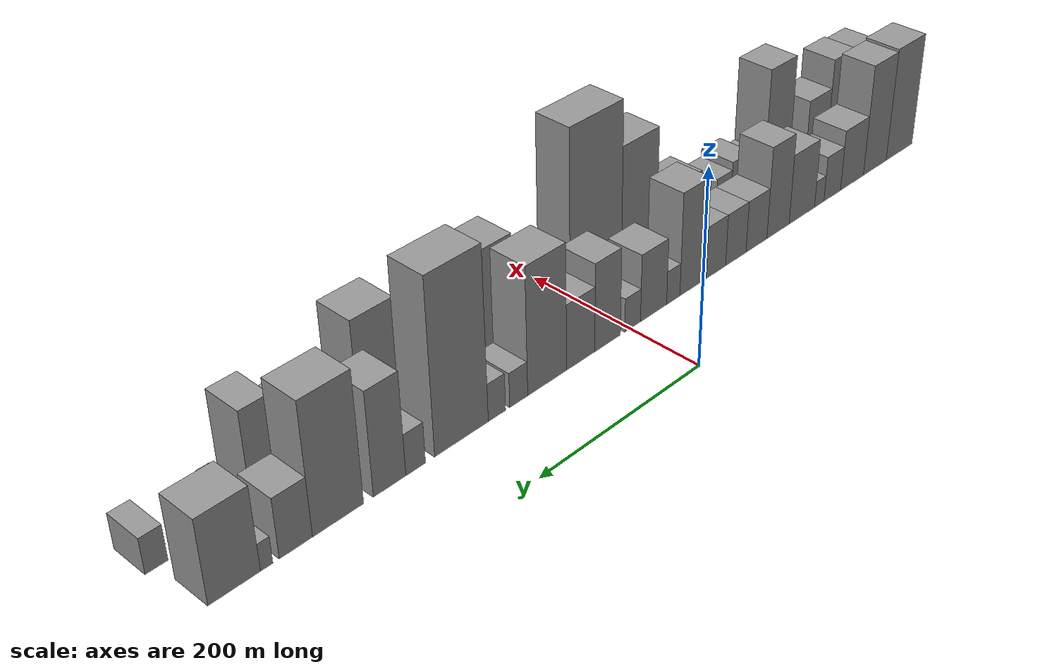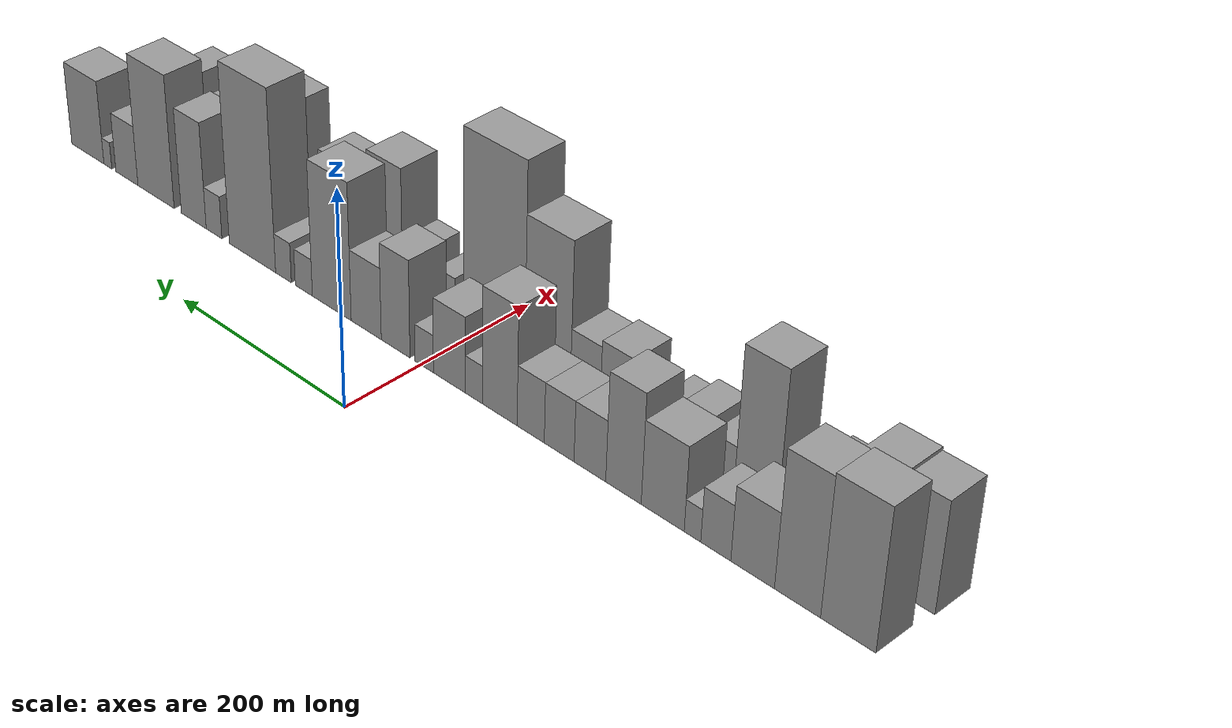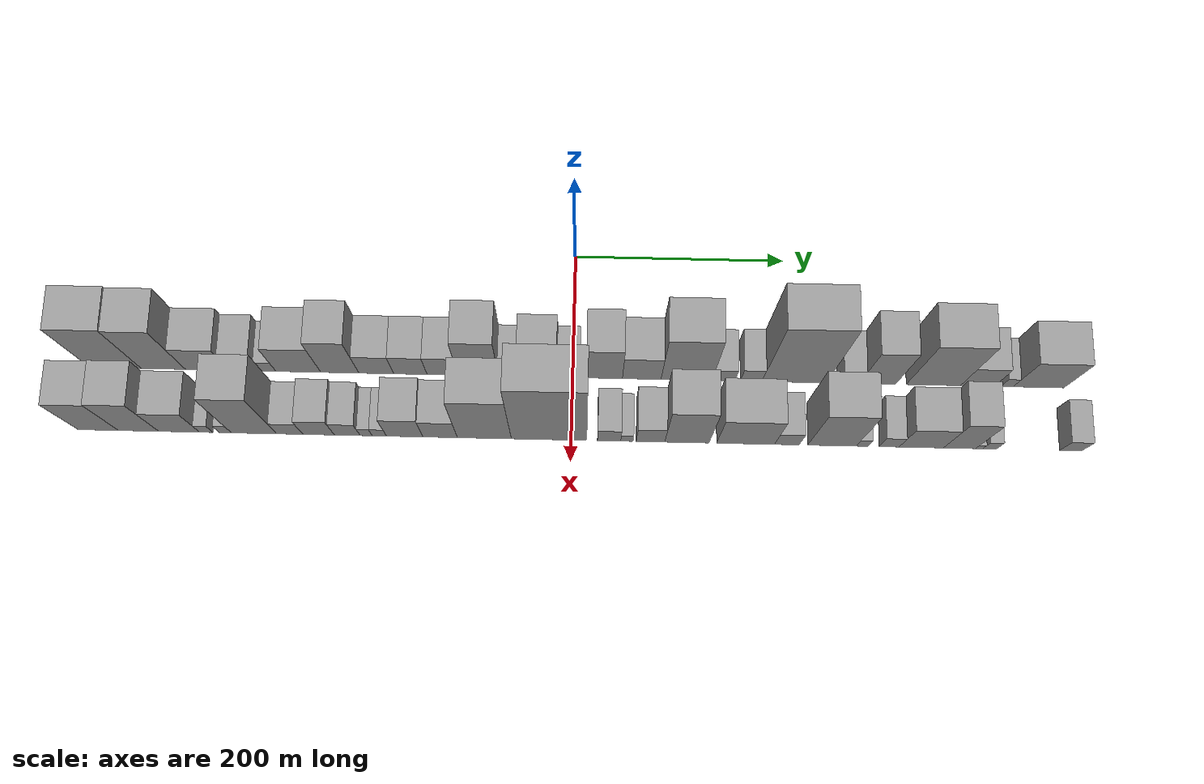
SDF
<sdf version="1.6">
 <world name="default">
  <scene>
   <sky><clouds><speed>12</speed></clouds></sky>
   <ambient>0.4 0.4 0.4 1</ambient>
   <background>0.7 0.7 0.7 1</background>
   <shadows>1</shadows>
  </scene>
  <gravity>0 0 -9.8066</gravity>
  <magnetic_field>6e-06 2.3e-05 -4.2e-05</magnetic_field>
  <physics default="0" name="default_physics" type="ode">
   <ode>
    <solver>
     <type>quick</type>
     <iters>10</iters>
     <sor>1.0</sor>
     <use_dynamic_moi_rescaling>0</use_dynamic_moi_rescaling>
    </solver>
    <constraints>
     <cfm>0</cfm>
     <erp>0.2</erp>
     <contact_max_correcting_vel>100</contact_max_correcting_vel>
     <contact_surface_layer>0.001</contact_surface_layer>
    </constraints>
   </ode>
   <max_step_size>0.004</max_step_size>
   <real_time_factor>1</real_time_factor>
   <real_time_update_rate>250</real_time_update_rate>
  </physics>
  <light name="sun" type="directional">
   <pose>0 0 10 0 0 0</pose>
   <diffuse>0.8 0.8 0.8 1</diffuse>
   <specular>0.2 0.2 0.2 1</specular>
   <attenuation>
    <range>1000</range>
    <constant>0.9</constant>
    <linear>0.01</linear>
    <quadratic>0.001</quadratic>
   </attenuation>
   <direction>-0.5 0.1 -0.9</direction>
  </light>
  <model name="building_1">
   <static>1</static>
   <pose>100.0000 -431.6292 0 0.000000 0.000000 0.000000</pose>
   <link name="link">
    <pose>0 0 64.50 0 0 0</pose>
    <collision name="collision"><geometry><box><size>40.0000 48.7415 129.0000</size></box></geometry></collision>
    <visual name="visual">
     <cast_shadows>0</cast_shadows>
     <geometry><box><size>40.0000 48.7415 129.0000</size></box></geometry>
     <material>
      <script>
       <uri>model://grey_wall/materials/scripts</uri>
       <uri>model://grey_wall/materials/textures</uri>
       <name>vrc/grey_wall</name>
      </script>
     </material>
    </visual>
   </link>
  </model>
  <model name="building_2">
   <static>1</static>
   <pose>100.0000 -386.3340 0 0.000000 0.000000 0.000000</pose>
   <link name="link">
    <pose>0 0 63.00 0 0 0</pose>
    <collision name="collision"><geometry><box><size>40.0000 41.8489 126.0000</size></box></geometry></collision>
    <visual name="visual">
     <cast_shadows>0</cast_shadows>
     <geometry><box><size>40.0000 41.8489 126.0000</size></box></geometry>
     <material>
      <script>
       <uri>model://grey_wall/materials/scripts</uri>
       <uri>model://grey_wall/materials/textures</uri>
       <name>vrc/grey_wall</name>
      </script>
     </material>
    </visual>
   </link>
  </model>
  <model name="building_3">
   <static>1</static>
   <pose>100.0000 -345.0512 0 0.000000 0.000000 0.000000</pose>
   <link name="link">
    <pose>0 0 34.50 0 0 0</pose>
    <collision name="collision"><geometry><box><size>40.0000 40.7167 69.0000</size></box></geometry></collision>
    <visual name="visual">
     <cast_shadows>0</cast_shadows>
     <geometry><box><size>40.0000 40.7167 69.0000</size></box></geometry>
     <material>
      <script>
       <uri>model://grey_wall/materials/scripts</uri>
       <uri>model://grey_wall/materials/textures</uri>
       <name>vrc/grey_wall</name>
      </script>
     </material>
    </visual>
   </link>
  </model>
  <model name="building_4">
   <static>1</static>
   <pose>100.0000 -310.3481 0 0.000000 0.000000 0.000000</pose>
   <link name="link">
    <pose>0 0 25.50 0 0 0</pose>
    <collision name="collision"><geometry><box><size>40.0000 28.6895 51.0000</size></box></geometry></collision>
    <visual name="visual">
     <cast_shadows>0</cast_shadows>
     <geometry><box><size>40.0000 28.6895 51.0000</size></box></geometry>
     <material>
      <script>
       <uri>model://grey_wall/materials/scripts</uri>
       <uri>model://grey_wall/materials/textures</uri>
       <name>vrc/grey_wall</name>
      </script>
     </material>
    </visual>
   </link>
  </model>
  <model name="building_5">
   <static>1</static>
   <pose>100.0000 -287.9928 0 0.000000 0.000000 0.000000</pose>
   <link name="link">
    <pose>0 0 15.00 0 0 0</pose>
    <collision name="collision"><geometry><box><size>40.0000 16.0211 30.0000</size></box></geometry></collision>
    <visual name="visual">
     <cast_shadows>0</cast_shadows>
     <geometry><box><size>40.0000 16.0211 30.0000</size></box></geometry>
     <material>
      <script>
       <uri>model://grey_wall/materials/scripts</uri>
       <uri>model://grey_wall/materials/textures</uri>
       <name>vrc/grey_wall</name>
      </script>
     </material>
    </visual>
   </link>
  </model>
  <model name="building_6">
   <static>1</static>
   <pose>100.0000 -258.7509 0 0.000000 0.000000 0.000000</pose>
   <link name="link">
    <pose>0 0 39.00 0 0 0</pose>
    <collision name="collision"><geometry><box><size>40.0000 42.4628 78.0000</size></box></geometry></collision>
    <visual name="visual">
     <cast_shadows>0</cast_shadows>
     <geometry><box><size>40.0000 42.4628 78.0000</size></box></geometry>
     <material>
      <script>
       <uri>model://grey_wall/materials/scripts</uri>
       <uri>model://grey_wall/materials/textures</uri>
       <name>vrc/grey_wall</name>
      </script>
     </material>
    </visual>
   </link>
  </model>
  <model name="building_7">
   <static>1</static>
   <pose>100.0000 -219.5219 0 0.000000 0.000000 0.000000</pose>
   <link name="link">
    <pose>0 0 51.00 0 0 0</pose>
    <collision name="collision"><geometry><box><size>40.0000 35.9952 102.0000</size></box></geometry></collision>
    <visual name="visual">
     <cast_shadows>0</cast_shadows>
     <geometry><box><size>40.0000 35.9952 102.0000</size></box></geometry>
     <material>
      <script>
       <uri>model://grey_wall/materials/scripts</uri>
       <uri>model://grey_wall/materials/textures</uri>
       <name>vrc/grey_wall</name>
      </script>
     </material>
    </visual>
   </link>
  </model>
  <model name="building_8">
   <static>1</static>
   <pose>100.0000 -185.1038 0 0.000000 0.000000 0.000000</pose>
   <link name="link">
    <pose>0 0 28.50 0 0 0</pose>
    <collision name="collision"><geometry><box><size>40.0000 32.8408 57.0000</size></box></geometry></collision>
    <visual name="visual">
     <cast_shadows>0</cast_shadows>
     <geometry><box><size>40.0000 32.8408 57.0000</size></box></geometry>
     <material>
      <script>
       <uri>model://grey_wall/materials/scripts</uri>
       <uri>model://grey_wall/materials/textures</uri>
       <name>vrc/grey_wall</name>
      </script>
     </material>
    </visual>
   </link>
  </model>
  <model name="building_9">
   <static>1</static>
   <pose>100.0000 -152.9607 0 0.000000 0.000000 0.000000</pose>
   <link name="link">
    <pose>0 0 28.50 0 0 0</pose>
    <collision name="collision"><geometry><box><size>40.0000 31.4455 57.0000</size></box></geometry></collision>
    <visual name="visual">
     <cast_shadows>0</cast_shadows>
     <geometry><box><size>40.0000 31.4455 57.0000</size></box></geometry>
     <material>
      <script>
       <uri>model://grey_wall/materials/scripts</uri>
       <uri>model://grey_wall/materials/textures</uri>
       <name>vrc/grey_wall</name>
      </script>
     </material>
    </visual>
   </link>
  </model>
  <model name="building_10">
   <static>1</static>
   <pose>100.0000 -122.6070 0 0.000000 0.000000 0.000000</pose>
   <link name="link">
    <pose>0 0 28.50 0 0 0</pose>
    <collision name="collision"><geometry><box><size>40.0000 29.2618 57.0000</size></box></geometry></collision>
    <visual name="visual">
     <cast_shadows>0</cast_shadows>
     <geometry><box><size>40.0000 29.2618 57.0000</size></box></geometry>
     <material>
      <script>
       <uri>model://grey_wall/materials/scripts</uri>
       <uri>model://grey_wall/materials/textures</uri>
       <name>vrc/grey_wall</name>
      </script>
     </material>
    </visual>
   </link>
  </model>
  <model name="building_11">
   <static>1</static>
   <pose>100.0000 -88.7973 0 0.000000 0.000000 0.000000</pose>
   <link name="link">
    <pose>0 0 55.50 0 0 0</pose>
    <collision name="collision"><geometry><box><size>40.0000 38.3575 111.0000</size></box></geometry></collision>
    <visual name="visual">
     <cast_shadows>0</cast_shadows>
     <geometry><box><size>40.0000 38.3575 111.0000</size></box></geometry>
     <material>
      <script>
       <uri>model://grey_wall/materials/scripts</uri>
       <uri>model://grey_wall/materials/textures</uri>
       <name>vrc/grey_wall</name>
      </script>
     </material>
    </visual>
   </link>
  </model>
  <model name="building_12">
   <static>1</static>
   <pose>100.0000 -60.1758 0 0.000000 0.000000 0.000000</pose>
   <link name="link">
    <pose>0 0 18.00 0 0 0</pose>
    <collision name="collision"><geometry><box><size>40.0000 18.8855 36.0000</size></box></geometry></collision>
    <visual name="visual">
     <cast_shadows>0</cast_shadows>
     <geometry><box><size>40.0000 18.8855 36.0000</size></box></geometry>
     <material>
      <script>
       <uri>model://grey_wall/materials/scripts</uri>
       <uri>model://grey_wall/materials/textures</uri>
       <name>vrc/grey_wall</name>
      </script>
     </material>
    </visual>
   </link>
  </model>
  <model name="building_13">
   <static>1</static>
   <pose>100.0000 -32.5229 0 0.000000 0.000000 0.000000</pose>
   <link name="link">
    <pose>0 0 36.00 0 0 0</pose>
    <collision name="collision"><geometry><box><size>40.0000 36.4202 72.0000</size></box></geometry></collision>
    <visual name="visual">
     <cast_shadows>0</cast_shadows>
     <geometry><box><size>40.0000 36.4202 72.0000</size></box></geometry>
     <material>
      <script>
       <uri>model://grey_wall/materials/scripts</uri>
       <uri>model://grey_wall/materials/textures</uri>
       <name>vrc/grey_wall</name>
      </script>
     </material>
    </visual>
   </link>
  </model>
  <model name="building_14">
   <static>1</static>
   <pose>100.0000 -3.6840 0 0.000000 0.000000 0.000000</pose>
   <link name="link">
    <pose>0 0 18.00 0 0 0</pose>
    <collision name="collision"><geometry><box><size>40.0000 21.2575 36.0000</size></box></geometry></collision>
    <visual name="visual">
     <cast_shadows>0</cast_shadows>
     <geometry><box><size>40.0000 21.2575 36.0000</size></box></geometry>
     <material>
      <script>
       <uri>model://grey_wall/materials/scripts</uri>
       <uri>model://grey_wall/materials/textures</uri>
       <name>vrc/grey_wall</name>
      </script>
     </material>
    </visual>
   </link>
  </model>
  <model name="building_15">
   <static>1</static>
   <pose>100.0000 29.8844 0 0.000000 0.000000 0.000000</pose>
   <link name="link">
    <pose>0 0 46.50 0 0 0</pose>
    <collision name="collision"><geometry><box><size>40.0000 33.8792 93.0000</size></box></geometry></collision>
    <visual name="visual">
     <cast_shadows>0</cast_shadows>
     <geometry><box><size>40.0000 33.8792 93.0000</size></box></geometry>
     <material>
      <script>
       <uri>model://grey_wall/materials/scripts</uri>
       <uri>model://grey_wall/materials/textures</uri>
       <name>vrc/grey_wall</name>
      </script>
     </material>
    </visual>
   </link>
  </model>
  <model name="building_16">
   <static>1</static>
   <pose>100.0000 64.9852 0 0.000000 0.000000 0.000000</pose>
   <link name="link">
    <pose>0 0 34.50 0 0 0</pose>
    <collision name="collision"><geometry><box><size>40.0000 36.3225 69.0000</size></box></geometry></collision>
    <visual name="visual">
     <cast_shadows>0</cast_shadows>
     <geometry><box><size>40.0000 36.3225 69.0000</size></box></geometry>
     <material>
      <script>
       <uri>model://grey_wall/materials/scripts</uri>
       <uri>model://grey_wall/materials/textures</uri>
       <name>vrc/grey_wall</name>
      </script>
     </material>
    </visual>
   </link>
  </model>
  <model name="building_17">
   <static>1</static>
   <pose>100.0000 107.1960 0 0.000000 0.000000 0.000000</pose>
   <link name="link">
    <pose>0 0 66.00 0 0 0</pose>
    <collision name="collision"><geometry><box><size>40.0000 48.0990 132.0000</size></box></geometry></collision>
    <visual name="visual">
     <cast_shadows>0</cast_shadows>
     <geometry><box><size>40.0000 48.0990 132.0000</size></box></geometry>
     <material>
      <script>
       <uri>model://grey_wall/materials/scripts</uri>
       <uri>model://grey_wall/materials/textures</uri>
       <name>vrc/grey_wall</name>
      </script>
     </material>
    </visual>
   </link>
  </model>
  <model name="building_18">
   <static>1</static>
   <pose>100.0000 142.0283 0 0.000000 0.000000 0.000000</pose>
   <link name="link">
    <pose>0 0 18.00 0 0 0</pose>
    <collision name="collision"><geometry><box><size>40.0000 21.5655 36.0000</size></box></geometry></collision>
    <visual name="visual">
     <cast_shadows>0</cast_shadows>
     <geometry><box><size>40.0000 21.5655 36.0000</size></box></geometry>
     <material>
      <script>
       <uri>model://grey_wall/materials/scripts</uri>
       <uri>model://grey_wall/materials/textures</uri>
       <name>vrc/grey_wall</name>
      </script>
     </material>
    </visual>
   </link>
  </model>
  <model name="building_19">
   <static>1</static>
   <pose>100.0000 167.9213 0 0.000000 0.000000 0.000000</pose>
   <link name="link">
    <pose>0 0 19.50 0 0 0</pose>
    <collision name="collision"><geometry><box><size>40.0000 20.2206 39.0000</size></box></geometry></collision>
    <visual name="visual">
     <cast_shadows>0</cast_shadows>
     <geometry><box><size>40.0000 20.2206 39.0000</size></box></geometry>
     <material>
      <script>
       <uri>model://grey_wall/materials/scripts</uri>
       <uri>model://grey_wall/materials/textures</uri>
       <name>vrc/grey_wall</name>
      </script>
     </material>
    </visual>
   </link>
  </model>
  <model name="building_20">
   <static>1</static>
   <pose>100.0000 208.3915 0 0.000000 0.000000 0.000000</pose>
   <link name="link">
    <pose>0 0 88.50 0 0 0</pose>
    <collision name="collision"><geometry><box><size>40.0000 60.7198 177.0000</size></box></geometry></collision>
    <visual name="visual">
     <cast_shadows>0</cast_shadows>
     <geometry><box><size>40.0000 60.7198 177.0000</size></box></geometry>
     <material>
      <script>
       <uri>model://grey_wall/materials/scripts</uri>
       <uri>model://grey_wall/materials/textures</uri>
       <name>vrc/grey_wall</name>
      </script>
     </material>
    </visual>
   </link>
  </model>
  <model name="building_21">
   <static>1</static>
   <pose>100.0000 259.3362 0 0.000000 0.000000 0.000000</pose>
   <link name="link">
    <pose>0 0 21.00 0 0 0</pose>
    <collision name="collision"><geometry><box><size>40.0000 21.1696 42.0000</size></box></geometry></collision>
    <visual name="visual">
     <cast_shadows>0</cast_shadows>
     <geometry><box><size>40.0000 21.1696 42.0000</size></box></geometry>
     <material>
      <script>
       <uri>model://grey_wall/materials/scripts</uri>
       <uri>model://grey_wall/materials/textures</uri>
       <name>vrc/grey_wall</name>
      </script>
     </material>
    </visual>
   </link>
  </model>
  <model name="building_22">
   <static>1</static>
   <pose>100.0000 286.9955 0 0.000000 0.000000 0.000000</pose>
   <link name="link">
    <pose>0 0 52.50 0 0 0</pose>
    <collision name="collision"><geometry><box><size>40.0000 34.1492 105.0000</size></box></geometry></collision>
    <visual name="visual">
     <cast_shadows>0</cast_shadows>
     <geometry><box><size>40.0000 34.1492 105.0000</size></box></geometry>
     <material>
      <script>
       <uri>model://grey_wall/materials/scripts</uri>
       <uri>model://grey_wall/materials/textures</uri>
       <name>vrc/grey_wall</name>
      </script>
     </material>
    </visual>
   </link>
  </model>
  <model name="building_23">
   <static>1</static>
   <pose>100.0000 339.6057 0 0.000000 0.000000 0.000000</pose>
   <link name="link">
    <pose>0 0 66.00 0 0 0</pose>
    <collision name="collision"><geometry><box><size>40.0000 51.0711 132.0000</size></box></geometry></collision>
    <visual name="visual">
     <cast_shadows>0</cast_shadows>
     <geometry><box><size>40.0000 51.0711 132.0000</size></box></geometry>
     <material>
      <script>
       <uri>model://grey_wall/materials/scripts</uri>
       <uri>model://grey_wall/materials/textures</uri>
       <name>vrc/grey_wall</name>
      </script>
     </material>
    </visual>
   </link>
  </model>
  <model name="building_24">
   <static>1</static>
   <pose>100.0000 381.0753 0 0.000000 0.000000 0.000000</pose>
   <link name="link">
    <pose>0 0 30.00 0 0 0</pose>
    <collision name="collision"><geometry><box><size>40.0000 31.8682 60.0000</size></box></geometry></collision>
    <visual name="visual">
     <cast_shadows>0</cast_shadows>
     <geometry><box><size>40.0000 31.8682 60.0000</size></box></geometry>
     <material>
      <script>
       <uri>model://grey_wall/materials/scripts</uri>
       <uri>model://grey_wall/materials/textures</uri>
       <name>vrc/grey_wall</name>
      </script>
     </material>
    </visual>
   </link>
  </model>
  <model name="building_25">
   <static>1</static>
   <pose>100.0000 408.7805 0 0.000000 0.000000 0.000000</pose>
   <link name="link">
    <pose>0 0 13.50 0 0 0</pose>
    <collision name="collision"><geometry><box><size>40.0000 11.5421 27.0000</size></box></geometry></collision>
    <visual name="visual">
     <cast_shadows>0</cast_shadows>
     <geometry><box><size>40.0000 11.5421 27.0000</size></box></geometry>
     <material>
      <script>
       <uri>model://grey_wall/materials/scripts</uri>
       <uri>model://grey_wall/materials/textures</uri>
       <name>vrc/grey_wall</name>
      </script>
     </material>
    </visual>
   </link>
  </model>
  <model name="building_26">
   <static>1</static>
   <pose>100.0000 438.4347 0 0.000000 0.000000 0.000000</pose>
   <link name="link">
    <pose>0 0 42.00 0 0 0</pose>
    <collision name="collision"><geometry><box><size>40.0000 47.7662 84.0000</size></box></geometry></collision>
    <visual name="visual">
     <cast_shadows>0</cast_shadows>
     <geometry><box><size>40.0000 47.7662 84.0000</size></box></geometry>
     <material>
      <script>
       <uri>model://grey_wall/materials/scripts</uri>
       <uri>model://grey_wall/materials/textures</uri>
       <name>vrc/grey_wall</name>
      </script>
     </material>
    </visual>
   </link>
  </model>
  <model name="building_27">
   <static>1</static>
   <pose>160.0000 -441.1111 0 0.000000 0.000000 0.000000</pose>
   <link name="link">
    <pose>0 0 51.00 0 0 0</pose>
    <collision name="collision"><geometry><box><size>40.0000 37.7779 102.0000</size></box></geometry></collision>
    <visual name="visual">
     <cast_shadows>0</cast_shadows>
     <geometry><box><size>40.0000 37.7779 102.0000</size></box></geometry>
     <material>
      <script>
       <uri>model://grey_wall/materials/scripts</uri>
       <uri>model://grey_wall/materials/textures</uri>
       <name>vrc/grey_wall</name>
      </script>
     </material>
    </visual>
   </link>
  </model>
  <model name="building_28">
   <static>1</static>
   <pose>160.0000 -403.4846 0 0.000000 0.000000 0.000000</pose>
   <link name="link">
    <pose>0 0 52.50 0 0 0</pose>
    <collision name="collision"><geometry><box><size>40.0000 37.4750 105.0000</size></box></geometry></collision>
    <visual name="visual">
     <cast_shadows>0</cast_shadows>
     <geometry><box><size>40.0000 37.4750 105.0000</size></box></geometry>
     <material>
      <script>
       <uri>model://grey_wall/materials/scripts</uri>
       <uri>model://grey_wall/materials/textures</uri>
       <name>vrc/grey_wall</name>
      </script>
     </material>
    </visual>
   </link>
  </model>
  <model name="building_29">
   <static>1</static>
   <pose>160.0000 -365.6365 0 0.000000 0.000000 0.000000</pose>
   <link name="link">
    <pose>0 0 36.00 0 0 0</pose>
    <collision name="collision"><geometry><box><size>40.0000 38.2213 72.0000</size></box></geometry></collision>
    <visual name="visual">
     <cast_shadows>0</cast_shadows>
     <geometry><box><size>40.0000 38.2213 72.0000</size></box></geometry>
     <material>
      <script>
       <uri>model://grey_wall/materials/scripts</uri>
       <uri>model://grey_wall/materials/textures</uri>
       <name>vrc/grey_wall</name>
      </script>
     </material>
    </visual>
   </link>
  </model>
  <model name="building_30">
   <static>1</static>
   <pose>160.0000 -340.3477 0 0.000000 0.000000 0.000000</pose>
   <link name="link">
    <pose>0 0 13.50 0 0 0</pose>
    <collision name="collision"><geometry><box><size>40.0000 12.3562 27.0000</size></box></geometry></collision>
    <visual name="visual">
     <cast_shadows>0</cast_shadows>
     <geometry><box><size>40.0000 12.3562 27.0000</size></box></geometry>
     <material>
      <script>
       <uri>model://grey_wall/materials/scripts</uri>
       <uri>model://grey_wall/materials/textures</uri>
       <name>vrc/grey_wall</name>
      </script>
     </material>
    </visual>
   </link>
  </model>
  <model name="building_31">
   <static>1</static>
   <pose>160.0000 -322.4974 0 0.000000 0.000000 0.000000</pose>
   <link name="link">
    <pose>0 0 13.50 0 0 0</pose>
    <collision name="collision"><geometry><box><size>40.0000 11.3445 27.0000</size></box></geometry></collision>
    <visual name="visual">
     <cast_shadows>0</cast_shadows>
     <geometry><box><size>40.0000 11.3445 27.0000</size></box></geometry>
     <material>
      <script>
       <uri>model://grey_wall/materials/scripts</uri>
       <uri>model://grey_wall/materials/textures</uri>
       <name>vrc/grey_wall</name>
      </script>
     </material>
    </visual>
   </link>
  </model>
  <model name="building_32">
   <static>1</static>
   <pose>160.0000 -295.7789 0 0.000000 0.000000 0.000000</pose>
   <link name="link">
    <pose>0 0 67.50 0 0 0</pose>
    <collision name="collision"><geometry><box><size>40.0000 42.0925 135.0000</size></box></geometry></collision>
    <visual name="visual">
     <cast_shadows>0</cast_shadows>
     <geometry><box><size>40.0000 42.0925 135.0000</size></box></geometry>
     <material>
      <script>
       <uri>model://grey_wall/materials/scripts</uri>
       <uri>model://grey_wall/materials/textures</uri>
       <name>vrc/grey_wall</name>
      </script>
     </material>
    </visual>
   </link>
  </model>
  <model name="building_33">
   <static>1</static>
   <pose>160.0000 -262.3763 0 0.000000 0.000000 0.000000</pose>
   <link name="link">
    <pose>0 0 21.00 0 0 0</pose>
    <collision name="collision"><geometry><box><size>40.0000 24.7126 42.0000</size></box></geometry></collision>
    <visual name="visual">
     <cast_shadows>0</cast_shadows>
     <geometry><box><size>40.0000 24.7126 42.0000</size></box></geometry>
     <material>
      <script>
       <uri>model://grey_wall/materials/scripts</uri>
       <uri>model://grey_wall/materials/textures</uri>
       <name>vrc/grey_wall</name>
      </script>
     </material>
    </visual>
   </link>
  </model>
  <model name="building_34">
   <static>1</static>
   <pose>160.0000 -235.3189 0 0.000000 0.000000 0.000000</pose>
   <link name="link">
    <pose>0 0 27.00 0 0 0</pose>
    <collision name="collision"><geometry><box><size>40.0000 29.4022 54.0000</size></box></geometry></collision>
    <visual name="visual">
     <cast_shadows>0</cast_shadows>
     <geometry><box><size>40.0000 29.4022 54.0000</size></box></geometry>
     <material>
      <script>
       <uri>model://grey_wall/materials/scripts</uri>
       <uri>model://grey_wall/materials/textures</uri>
       <name>vrc/grey_wall</name>
      </script>
     </material>
    </visual>
   </link>
  </model>
  <model name="building_35">
   <static>1</static>
   <pose>160.0000 -208.6016 0 0.000000 0.000000 0.000000</pose>
   <link name="link">
    <pose>0 0 22.50 0 0 0</pose>
    <collision name="collision"><geometry><box><size>40.0000 24.0325 45.0000</size></box></geometry></collision>
    <visual name="visual">
     <cast_shadows>0</cast_shadows>
     <geometry><box><size>40.0000 24.0325 45.0000</size></box></geometry>
     <material>
      <script>
       <uri>model://grey_wall/materials/scripts</uri>
       <uri>model://grey_wall/materials/textures</uri>
       <name>vrc/grey_wall</name>
      </script>
     </material>
    </visual>
   </link>
  </model>
  <model name="building_36">
   <static>1</static>
   <pose>160.0000 -190.9223 0 0.000000 0.000000 0.000000</pose>
   <link name="link">
    <pose>0 0 13.50 0 0 0</pose>
    <collision name="collision"><geometry><box><size>40.0000 11.3261 27.0000</size></box></geometry></collision>
    <visual name="visual">
     <cast_shadows>0</cast_shadows>
     <geometry><box><size>40.0000 11.3261 27.0000</size></box></geometry>
     <material>
      <script>
       <uri>model://grey_wall/materials/scripts</uri>
       <uri>model://grey_wall/materials/textures</uri>
       <name>vrc/grey_wall</name>
      </script>
     </material>
    </visual>
   </link>
  </model>
  <model name="building_37">
   <static>1</static>
   <pose>160.0000 -178.6644 0 0.000000 0.000000 0.000000</pose>
   <link name="link">
    <pose>0 0 13.50 0 0 0</pose>
    <collision name="collision"><geometry><box><size>40.0000 13.1896 27.0000</size></box></geometry></collision>
    <visual name="visual">
     <cast_shadows>0</cast_shadows>
     <geometry><box><size>40.0000 13.1896 27.0000</size></box></geometry>
     <material>
      <script>
       <uri>model://grey_wall/materials/scripts</uri>
       <uri>model://grey_wall/materials/textures</uri>
       <name>vrc/grey_wall</name>
      </script>
     </material>
    </visual>
   </link>
  </model>
  <model name="building_38">
   <static>1</static>
   <pose>160.0000 -155.0651 0 0.000000 0.000000 0.000000</pose>
   <link name="link">
    <pose>0 0 33.00 0 0 0</pose>
    <collision name="collision"><geometry><box><size>40.0000 34.0090 66.0000</size></box></geometry></collision>
    <visual name="visual">
     <cast_shadows>0</cast_shadows>
     <geometry><box><size>40.0000 34.0090 66.0000</size></box></geometry>
     <material>
      <script>
       <uri>model://grey_wall/materials/scripts</uri>
       <uri>model://grey_wall/materials/textures</uri>
       <name>vrc/grey_wall</name>
      </script>
     </material>
    </visual>
   </link>
  </model>
  <model name="building_39">
   <static>1</static>
   <pose>160.0000 -122.0025 0 0.000000 0.000000 0.000000</pose>
   <link name="link">
    <pose>0 0 30.00 0 0 0</pose>
    <collision name="collision"><geometry><box><size>40.0000 32.1162 60.0000</size></box></geometry></collision>
    <visual name="visual">
     <cast_shadows>0</cast_shadows>
     <geometry><box><size>40.0000 32.1162 60.0000</size></box></geometry>
     <material>
      <script>
       <uri>model://grey_wall/materials/scripts</uri>
       <uri>model://grey_wall/materials/textures</uri>
       <name>vrc/grey_wall</name>
      </script>
     </material>
    </visual>
   </link>
  </model>
  <model name="building_40">
   <static>1</static>
   <pose>160.0000 -80.8237 0 0.000000 0.000000 0.000000</pose>
   <link name="link">
    <pose>0 0 70.50 0 0 0</pose>
    <collision name="collision"><geometry><box><size>40.0000 50.2415 141.0000</size></box></geometry></collision>
    <visual name="visual">
     <cast_shadows>0</cast_shadows>
     <geometry><box><size>40.0000 50.2415 141.0000</size></box></geometry>
     <material>
      <script>
       <uri>model://grey_wall/materials/scripts</uri>
       <uri>model://grey_wall/materials/textures</uri>
       <name>vrc/grey_wall</name>
      </script>
     </material>
    </visual>
   </link>
  </model>
  <model name="building_41">
   <static>1</static>
   <pose>160.0000 -20.6241 0 0.000000 0.000000 0.000000</pose>
   <link name="link">
    <pose>0 0 94.50 0 0 0</pose>
    <collision name="collision"><geometry><box><size>40.0000 70.1576 189.0000</size></box></geometry></collision>
    <visual name="visual">
     <cast_shadows>0</cast_shadows>
     <geometry><box><size>40.0000 70.1576 189.0000</size></box></geometry>
     <material>
      <script>
       <uri>model://grey_wall/materials/scripts</uri>
       <uri>model://grey_wall/materials/textures</uri>
       <name>vrc/grey_wall</name>
      </script>
     </material>
    </visual>
   </link>
  </model>
  <model name="building_42">
   <static>1</static>
   <pose>160.0000 35.2909 0 0.000000 0.000000 0.000000</pose>
   <link name="link">
    <pose>0 0 21.00 0 0 0</pose>
    <collision name="collision"><geometry><box><size>40.0000 21.6725 42.0000</size></box></geometry></collision>
    <visual name="visual">
     <cast_shadows>0</cast_shadows>
     <geometry><box><size>40.0000 21.6725 42.0000</size></box></geometry>
     <material>
      <script>
       <uri>model://grey_wall/materials/scripts</uri>
       <uri>model://grey_wall/materials/textures</uri>
       <name>vrc/grey_wall</name>
      </script>
     </material>
    </visual>
   </link>
  </model>
  <model name="building_43">
   <static>1</static>
   <pose>160.0000 51.8262 0 0.000000 0.000000 0.000000</pose>
   <link name="link">
    <pose>0 0 12.00 0 0 0</pose>
    <collision name="collision"><geometry><box><size>40.0000 11.3980 24.0000</size></box></geometry></collision>
    <visual name="visual">
     <cast_shadows>0</cast_shadows>
     <geometry><box><size>40.0000 11.3980 24.0000</size></box></geometry>
     <material>
      <script>
       <uri>model://grey_wall/materials/scripts</uri>
       <uri>model://grey_wall/materials/textures</uri>
       <name>vrc/grey_wall</name>
      </script>
     </material>
    </visual>
   </link>
  </model>
  <model name="building_44">
   <static>1</static>
   <pose>160.0000 73.7592 0 0.000000 0.000000 0.000000</pose>
   <link name="link">
    <pose>0 0 25.50 0 0 0</pose>
    <collision name="collision"><geometry><box><size>40.0000 26.4680 51.0000</size></box></geometry></collision>
    <visual name="visual">
     <cast_shadows>0</cast_shadows>
     <geometry><box><size>40.0000 26.4680 51.0000</size></box></geometry>
     <material>
      <script>
       <uri>model://grey_wall/materials/scripts</uri>
       <uri>model://grey_wall/materials/textures</uri>
       <name>vrc/grey_wall</name>
      </script>
     </material>
    </visual>
   </link>
  </model>
  <model name="building_45">
   <static>1</static>
   <pose>160.0000 107.6617 0 0.000000 0.000000 0.000000</pose>
   <link name="link">
    <pose>0 0 58.50 0 0 0</pose>
    <collision name="collision"><geometry><box><size>40.0000 41.3372 117.0000</size></box></geometry></collision>
    <visual name="visual">
     <cast_shadows>0</cast_shadows>
     <geometry><box><size>40.0000 41.3372 117.0000</size></box></geometry>
     <material>
      <script>
       <uri>model://grey_wall/materials/scripts</uri>
       <uri>model://grey_wall/materials/textures</uri>
       <name>vrc/grey_wall</name>
      </script>
     </material>
    </visual>
   </link>
  </model>
  <model name="building_46">
   <static>1</static>
   <pose>160.0000 162.2990 0 0.000000 0.000000 0.000000</pose>
   <link name="link">
    <pose>0 0 45.00 0 0 0</pose>
    <collision name="collision"><geometry><box><size>40.0000 53.9372 90.0000</size></box></geometry></collision>
    <visual name="visual">
     <cast_shadows>0</cast_shadows>
     <geometry><box><size>40.0000 53.9372 90.0000</size></box></geometry>
     <material>
      <script>
       <uri>model://grey_wall/materials/scripts</uri>
       <uri>model://grey_wall/materials/textures</uri>
       <name>vrc/grey_wall</name>
      </script>
     </material>
    </visual>
   </link>
  </model>
  <model name="building_47">
   <static>1</static>
   <pose>160.0000 200.7086 0 0.000000 0.000000 0.000000</pose>
   <link name="link">
    <pose>0 0 21.00 0 0 0</pose>
    <collision name="collision"><geometry><box><size>40.0000 22.8821 42.0000</size></box></geometry></collision>
    <visual name="visual">
     <cast_shadows>0</cast_shadows>
     <geometry><box><size>40.0000 22.8821 42.0000</size></box></geometry>
     <material>
      <script>
       <uri>model://grey_wall/materials/scripts</uri>
       <uri>model://grey_wall/materials/textures</uri>
       <name>vrc/grey_wall</name>
      </script>
     </material>
    </visual>
   </link>
  </model>
  <model name="building_48">
   <static>1</static>
   <pose>160.0000 242.6406 0 0.000000 0.000000 0.000000</pose>
   <link name="link">
    <pose>0 0 60.00 0 0 0</pose>
    <collision name="collision"><geometry><box><size>40.0000 44.9819 120.0000</size></box></geometry></collision>
    <visual name="visual">
     <cast_shadows>0</cast_shadows>
     <geometry><box><size>40.0000 44.9819 120.0000</size></box></geometry>
     <material>
      <script>
       <uri>model://grey_wall/materials/scripts</uri>
       <uri>model://grey_wall/materials/textures</uri>
       <name>vrc/grey_wall</name>
      </script>
     </material>
    </visual>
   </link>
  </model>
  <model name="building_49">
   <static>1</static>
   <pose>160.0000 270.8561 0 0.000000 0.000000 0.000000</pose>
   <link name="link">
    <pose>0 0 12.00 0 0 0</pose>
    <collision name="collision"><geometry><box><size>40.0000 11.4489 24.0000</size></box></geometry></collision>
    <visual name="visual">
     <cast_shadows>0</cast_shadows>
     <geometry><box><size>40.0000 11.4489 24.0000</size></box></geometry>
     <material>
      <script>
       <uri>model://grey_wall/materials/scripts</uri>
       <uri>model://grey_wall/materials/textures</uri>
       <name>vrc/grey_wall</name>
      </script>
     </material>
    </visual>
   </link>
  </model>
  <model name="building_50">
   <static>1</static>
   <pose>160.0000 295.8475 0 0.000000 0.000000 0.000000</pose>
   <link name="link">
    <pose>0 0 18.00 0 0 0</pose>
    <collision name="collision"><geometry><box><size>40.0000 18.5340 36.0000</size></box></geometry></collision>
    <visual name="visual">
     <cast_shadows>0</cast_shadows>
     <geometry><box><size>40.0000 18.5340 36.0000</size></box></geometry>
     <material>
      <script>
       <uri>model://grey_wall/materials/scripts</uri>
       <uri>model://grey_wall/materials/textures</uri>
       <name>vrc/grey_wall</name>
      </script>
     </material>
    </visual>
   </link>
  </model>
  <model name="building_51">
   <static>1</static>
   <pose>160.0000 325.7045 0 0.000000 0.000000 0.000000</pose>
   <link name="link">
    <pose>0 0 36.00 0 0 0</pose>
    <collision name="collision"><geometry><box><size>40.0000 41.1799 72.0000</size></box></geometry></collision>
    <visual name="visual">
     <cast_shadows>0</cast_shadows>
     <geometry><box><size>40.0000 41.1799 72.0000</size></box></geometry>
     <material>
      <script>
       <uri>model://grey_wall/materials/scripts</uri>
       <uri>model://grey_wall/materials/textures</uri>
       <name>vrc/grey_wall</name>
      </script>
     </material>
    </visual>
   </link>
  </model>
  <model name="building_52">
   <static>1</static>
   <pose>160.0000 361.2260 0 0.000000 0.000000 0.000000</pose>
   <link name="link">
    <pose>0 0 48.00 0 0 0</pose>
    <collision name="collision"><geometry><box><size>40.0000 29.8632 96.0000</size></box></geometry></collision>
    <visual name="visual">
     <cast_shadows>0</cast_shadows>
     <geometry><box><size>40.0000 29.8632 96.0000</size></box></geometry>
     <material>
      <script>
       <uri>model://grey_wall/materials/scripts</uri>
       <uri>model://grey_wall/materials/textures</uri>
       <name>vrc/grey_wall</name>
      </script>
     </material>
    </visual>
   </link>
  </model>
  <model name="building_53">
   <static>1</static>
   <pose>160.0000 379.4325 0 0.000000 0.000000 0.000000</pose>
   <link name="link">
    <pose>0 0 7.50 0 0 0</pose>
    <collision name="collision"><geometry><box><size>40.0000 6.5498 15.0000</size></box></geometry></collision>
    <visual name="visual">
     <cast_shadows>0</cast_shadows>
     <geometry><box><size>40.0000 6.5498 15.0000</size></box></geometry>
     <material>
      <script>
       <uri>model://grey_wall/materials/scripts</uri>
       <uri>model://grey_wall/materials/textures</uri>
       <name>vrc/grey_wall</name>
      </script>
     </material>
    </visual>
   </link>
  </model>
  <model name="building_54">
   <static>1</static>
   <pose>160.0000 389.1352 0 0.000000 0.000000 0.000000</pose>
   <link name="link">
    <pose>0 0 13.50 0 0 0</pose>
    <collision name="collision"><geometry><box><size>40.0000 12.8556 27.0000</size></box></geometry></collision>
    <visual name="visual">
     <cast_shadows>0</cast_shadows>
     <geometry><box><size>40.0000 12.8556 27.0000</size></box></geometry>
     <material>
      <script>
       <uri>model://grey_wall/materials/scripts</uri>
       <uri>model://grey_wall/materials/textures</uri>
       <name>vrc/grey_wall</name>
      </script>
     </material>
    </visual>
   </link>
  </model>
  <model name="building_55">
   <static>1</static>
   <pose>160.0000 464.3203 0 0.000000 0.000000 0.000000</pose>
   <link name="link">
    <pose>0 0 18.00 0 0 0</pose>
    <collision name="collision"><geometry><box><size>40.0000 20.5049 36.0000</size></box></geometry></collision>
    <visual name="visual">
     <cast_shadows>0</cast_shadows>
     <geometry><box><size>40.0000 20.5049 36.0000</size></box></geometry>
     <material>
      <script>
       <uri>model://grey_wall/materials/scripts</uri>
       <uri>model://grey_wall/materials/textures</uri>
       <name>vrc/grey_wall</name>
      </script>
     </material>
    </visual>
   </link>
  </model>
 </world>
</sdf>
